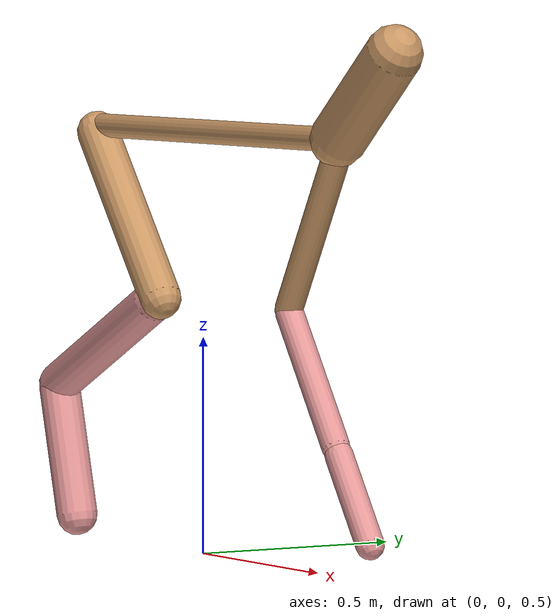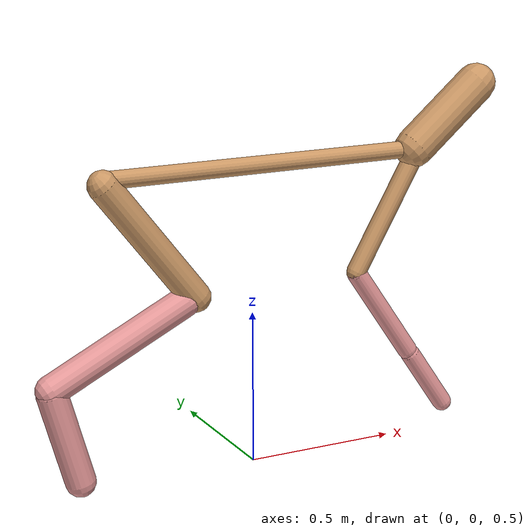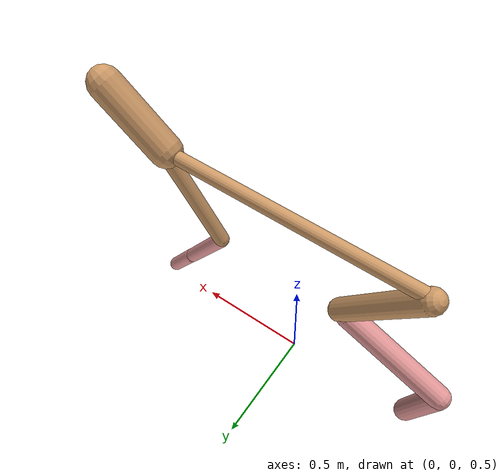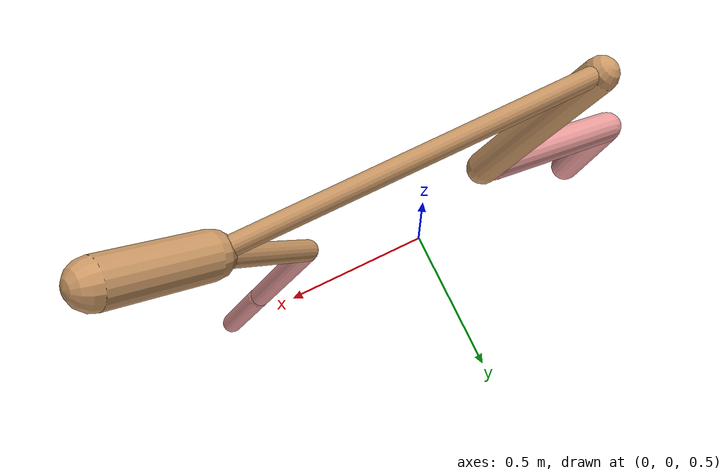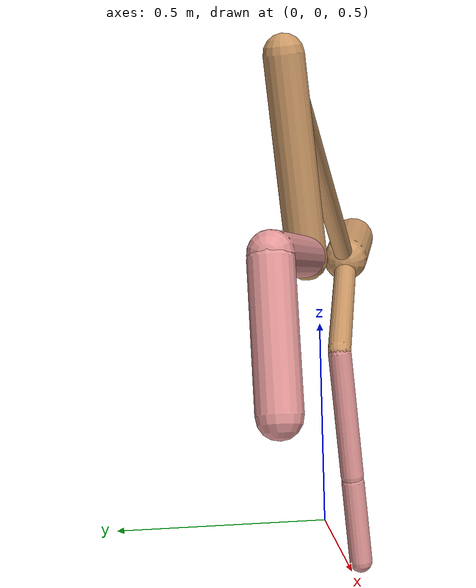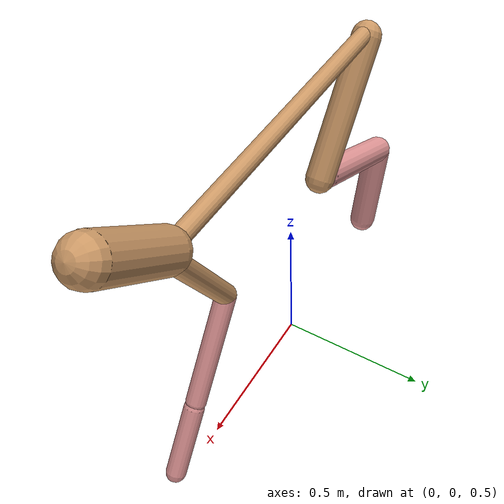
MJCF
<mujoco model="cheetah">
  <compiler angle="radian" coordinate="local" inertiafromgeom="true" settotalmass="14" />
  <default>
    <joint armature=".1" damping=".01" limited="true" solimplimit="0 .8 .03" solreflimit=".02 1" stiffness="8" />
    <geom conaffinity="0" condim="3" contype="1" friction="0.8 .1 .1" rgba="0.8 0.6 .4 1" solimp="0.0 0.8 0.01" solref="0.02 1" />
    <motor ctrllimited="true" ctrlrange="-1 1" />
  </default>
  <size nstack="300000" nuser_geom="1" />
  <option gravity="0 0 -9.81" timestep="0.01" />
  <worldbody>
    <body name="torso" pos="0.0 0.0 1.4744974279520429">
      <joint armature="0" axis="1 0 0" damping="0" limited="false" name="ignorex" pos="0 0 0" stiffness="0" type="slide" />
      <joint armature="0" axis="0 0 1" damping="0" limited="false" name="ignorez" pos="0 0 0" stiffness="0" type="slide" />
      <joint armature="0" axis="0 1 0" damping="0" limited="false" name="ignorey" pos="0 0 0" stiffness="0" type="hinge" />
      <geom fromto="-0.5 0.0 0.0 0.599119412780578 0.0 0.0" name="torso" size="0.027818324522061465" type="capsule" />
      <geom axisangle="0 1 0 .87" name="head" pos="0.6991194127805781 0.0 0.1" size="0.0647116796382706 0.15" type="capsule" />

      <body name="bthigh" pos="-.5 0 0">
        <joint axis="0 1 0" damping="6" name="bthigh" pos="0 0 0" range="-.52 1.05" stiffness="240" type="hinge" />
        <geom axisangle="0 1 0 -3.8" name="bthigh" pos="0.1580269621445353 0.0 -0.20543505078789587" size="0.04883530237479102 0.24017129411275104" type="capsule" />
        <body name="bshin" pos="0.27605392428907055 0.0 -0.4008701015757917">
          <joint axis="0 1 0" damping="4.5" name="bshin" pos="0 0 0" range="-.785 .785" stiffness="180" type="hinge" />
          <geom axisangle="0 1 0 -2.03" name="bshin" pos="-0.22805909647285666 0.0 -0.11402954823642833" rgba="0.9 0.6 0.6 1" size="0.04883530237479102 0.2484530628752597" type="capsule" />
          <body name="bfoot" pos="-0.4561181929457133 0.0 -0.22805909647285666">
            <joint axis="0 1 0" damping="3" name="bfoot" pos="0 0 0" range="-.4 .785" stiffness="120" type="hinge" />
            <geom axisangle="0 1 0 -.27" name="bfoot" pos="0.048229670170711315 0.0 -0.15594260021863326" rgba="0.9 0.6 0.6 1" size="0.04883530237479102 0.15569725273516274" type="capsule" />
            <inertial mass="10" />
          </body>
        </body>
      </body>
      <body name="fthigh" pos="0.5991194127805781 0.0 0.0">
        <joint axis="0 1 0" damping="4.5" name="fthigh" pos="0 0 0" range="-1.5 0.8" stiffness="180" type="hinge" />
        <geom axisangle="0 1 0 .52" name="fthigh" pos="-0.11452951475441653 0.0 -0.19633631100757118" size="0.0322 0.2213748270861586" type="capsule" />
        <body name="fshin" pos="-0.22905902950883306 0.0 -0.39267262201514236">
          <joint axis="0 1 0" damping="3" name="fshin" pos="0 0 0" range="-1.2 1.1" stiffness="120" type="hinge" />
          <geom axisangle="0 1 0 -.6" name="fshin" pos="0.10623848424358562 0.0 -0.14709943972188777" rgba="0.9 0.6 0.6 1" size="0.0322 0.17643407271528427" type="capsule" />
          <body name="ffoot" pos="0.21247696848717124 0.0 -0.29419887944377554">
            <joint axis="0 1 0" damping="1.5" name="ffoot" pos="0 0 0" range="-3.1 -0.3" stiffness="60" type="hinge" />
            <geom axisangle="0 1 0 -.6" name="ffoot" pos="0.07015229401466214 0.0 -0.10912579068947445" rgba="0.9 0.6 0.6 1" size="0.0322 0.11651306688745189" type="capsule" />
            <inertial mass="10" />
          </body>
        </body>
      </body>
    </body>
  </worldbody>
  <actuator>
    <motor gear="120" joint="bthigh" name="bthigh" />
    <motor gear="90" joint="bshin" name="bshin" />
    <motor gear="60" joint="bfoot" name="bfoot" />
    <motor gear="120" joint="fthigh" name="fthigh" />
    <motor gear="60" joint="fshin" name="fshin" />
    <motor gear="30" joint="ffoot" name="ffoot" />
  </actuator>
</mujoco>
